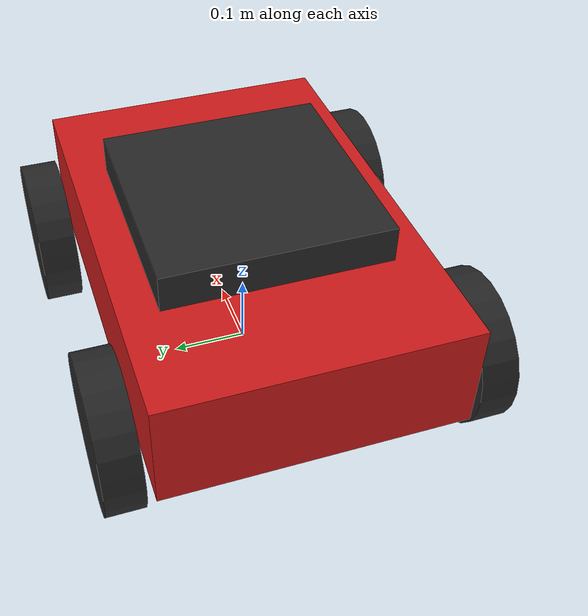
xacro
<?xml version="1.0"?>
<!--
  ARGOS UGV 플랫폼 계층
  =======================
  섀시(base_link) + 4개 바퀴 + 센서 플랫폼.
  이 파일은 로봇의 "몸체"만 정의. 센서와 컨트롤러는 별도 xacro.
-->
<robot xmlns:xacro="http://www.ros.org/wiki/xacro">

  <!-- 치수 파라미터 로드 -->
  <xacro:include filename="$(find argos_description)/urdf/platform/dimensions.xacro"/>

  <!--  관성 매크로 (box, cylinder)                                    -->
  <xacro:macro name="box_inertia" params="m x y z">
    <inertial>
      <mass value="${m}"/>
      <inertia
        ixx="${m * (y*y + z*z) / 12.0}" ixy="0" ixz="0"
        iyy="${m * (x*x + z*z) / 12.0}" iyz="0"
        izz="${m * (x*x + y*y) / 12.0}"/>
    </inertial>
  </xacro:macro>

  <xacro:macro name="cylinder_inertia" params="m r h">
    <inertial>
      <mass value="${m}"/>
      <inertia
        ixx="${m * (3*r*r + h*h) / 12.0}" ixy="0" ixz="0"
        iyy="${m * (3*r*r + h*h) / 12.0}" iyz="0"
        izz="${m * r * r / 2.0}"/>
    </inertial>
  </xacro:macro>

  <!--  base_footprint (지면 투영)                                     -->
  <link name="base_footprint"/>

  <joint name="base_footprint_joint" type="fixed">
    <parent link="base_footprint"/>
    <child link="base_link"/>
    <origin xyz="0 0 ${wheel_radius + ground_clearance}" rpy="0 0 0"/>
  </joint>

  <!--  base_link (메인 섀시)                                          -->
  <link name="base_link">
    <visual>
      <geometry>
        <box size="${base_length} ${base_width} ${base_height}"/>
      </geometry>
      <material name="argos_red"/>
    </visual>
    <collision>
      <geometry>
        <box size="${base_length} ${base_width} ${base_height}"/>
      </geometry>
    </collision>
    <xacro:box_inertia m="${base_mass}" x="${base_length}" y="${base_width}" z="${base_height}"/>
  </link>

  <!-- Gazebo 색상 (Gazebo는 URDF material 무시, 별도 지정 필요) -->
  <gazebo reference="base_link">
    <material>
      <ambient>0.8 0.1 0.1 1.0</ambient>
      <diffuse>0.8 0.1 0.1 1.0</diffuse>
    </material>
  </gazebo>

  <!--  센서 플랫폼 (base_link 위 상판)                                -->
  <link name="sensor_platform_link">
    <visual>
      <geometry>
        <box size="${sensor_platform_length} ${sensor_platform_width} ${sensor_platform_height}"/>
      </geometry>
      <material name="argos_dark"/>
    </visual>
    <collision>
      <geometry>
        <box size="${sensor_platform_length} ${sensor_platform_width} ${sensor_platform_height}"/>
      </geometry>
    </collision>
    <xacro:box_inertia m="0.5" x="${sensor_platform_length}" y="${sensor_platform_width}" z="${sensor_platform_height}"/>
  </link>

  <joint name="sensor_platform_joint" type="fixed">
    <parent link="base_link"/>
    <child link="sensor_platform_link"/>
    <origin xyz="0 0 ${sensor_platform_z}" rpy="0 0 0"/>
  </joint>

  <gazebo reference="sensor_platform_link">
    <material>
      <ambient>0.15 0.15 0.15 1.0</ambient>
      <diffuse>0.15 0.15 0.15 1.0</diffuse>
    </material>
  </gazebo>

  <!--  바퀴 매크로                                                    -->
  <xacro:macro name="wheel" params="prefix x_pos y_pos">
    <link name="${prefix}_wheel_link">
      <visual>
        <!-- 바퀴는 Y축 실린더 → 눕히기 위해 roll 90도 -->
        <origin xyz="0 0 0" rpy="${pi/2} 0 0"/>
        <geometry>
          <cylinder radius="${wheel_radius}" length="${wheel_width}"/>
        </geometry>
        <material name="argos_dark"/>
      </visual>
      <collision>
        <origin xyz="0 0 0" rpy="${pi/2} 0 0"/>
        <geometry>
          <cylinder radius="${wheel_radius}" length="${wheel_width}"/>
        </geometry>
      </collision>
      <xacro:cylinder_inertia m="${wheel_mass}" r="${wheel_radius}" h="${wheel_width}"/>
    </link>

    <joint name="${prefix}_wheel_joint" type="continuous">
      <parent link="base_link"/>
      <child link="${prefix}_wheel_link"/>
      <origin xyz="${x_pos} ${y_pos} ${-ground_clearance}" rpy="0 0 0"/>
      <axis xyz="0 1 0"/>
      <dynamics damping="0.1" friction="0.1"/>
    </joint>

    <gazebo reference="${prefix}_wheel_link">
      <material>
        <ambient>0.15 0.15 0.15 1.0</ambient>
        <diffuse>0.15 0.15 0.15 1.0</diffuse>
      </material>
      <mu1>1.0</mu1>
      <mu2>1.0</mu2>
    </gazebo>
  </xacro:macro>

  <!-- 4개 바퀴 인스턴스 -->
  <xacro:wheel prefix="front_left"  x_pos="${wheel_x_offset}"  y_pos="${wheel_y_offset}"/>
  <xacro:wheel prefix="front_right" x_pos="${wheel_x_offset}"  y_pos="${-wheel_y_offset}"/>
  <xacro:wheel prefix="rear_left"   x_pos="${-wheel_x_offset}" y_pos="${wheel_y_offset}"/>
  <xacro:wheel prefix="rear_right"  x_pos="${-wheel_x_offset}" y_pos="${-wheel_y_offset}"/>

</robot>

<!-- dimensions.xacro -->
<robot xmlns:xacro="http://www.ros.org/wiki/xacro">

  <!-- ========== 섀시 ========== -->
  <xacro:property name="base_length"  value="0.60"/>
  <xacro:property name="base_width"   value="0.40"/>
  <xacro:property name="base_height"  value="0.15"/>
  <xacro:property name="base_mass"    value="15.0"/>

  <!-- 지면으로부터 섀시 바닥까지 간격 -->
  <xacro:property name="ground_clearance" value="0.05"/>

  <!-- ========== 바퀴 ========== -->
  <xacro:property name="wheel_radius"    value="0.10"/>
  <xacro:property name="wheel_width"     value="0.05"/>
  <xacro:property name="wheel_mass"      value="1.0"/>

  <!-- 바퀴 위치 (섀시 중심 기준) -->
  <xacro:property name="wheel_x_offset"  value="0.20"/>
  <xacro:property name="wheel_y_offset"  value="${base_width / 2 + wheel_width / 2 + 0.01}"/>

  <!-- ========== 센서 플랫폼 ========== -->
  <!-- base_link 위 센서 마운트 상판 -->
  <xacro:property name="sensor_platform_length" value="0.30"/>
  <xacro:property name="sensor_platform_width"  value="0.30"/>
  <xacro:property name="sensor_platform_height" value="0.05"/>
  <xacro:property name="sensor_platform_z"       value="${base_height / 2 + sensor_platform_height / 2}"/>

  <!-- LiDAR: 센서 플랫폼 위 -->
  <xacro:property name="lidar_z" value="${base_height / 2 + sensor_platform_height + 0.02}"/>

  <!-- 카메라: 전방 상단 -->
  <xacro:property name="camera_x" value="${base_length / 2}"/>
  <xacro:property name="camera_z" value="${base_height / 2 - 0.02}"/>

  <!-- IMU: 섀시 중심 -->
  <xacro:property name="imu_z" value="0.0"/>

  <!-- ========== 색상 ========== -->
  <material name="argos_red">
    <color rgba="0.8 0.1 0.1 1.0"/>
  </material>
  <material name="argos_dark">
    <color rgba="0.15 0.15 0.15 1.0"/>
  </material>
  <material name="argos_silver">
    <color rgba="0.7 0.7 0.7 1.0"/>
  </material>
  <material name="argos_yellow">
    <color rgba="1.0 0.8 0.0 1.0"/>
  </material>

</robot>
